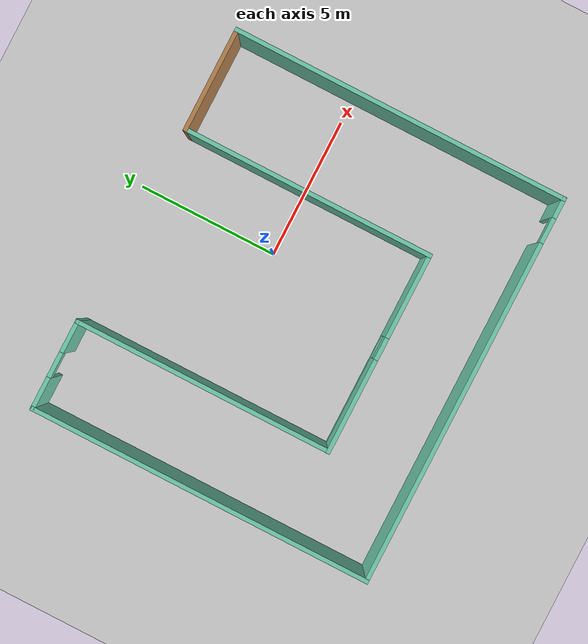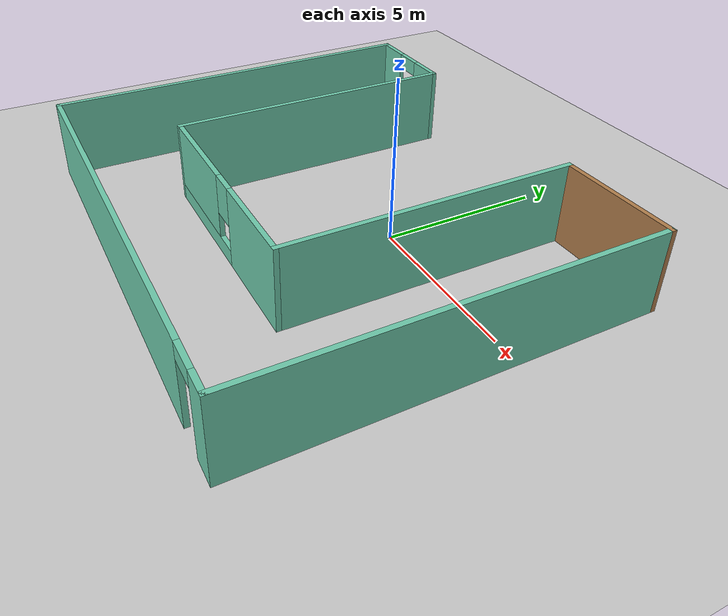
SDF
<sdf version="1.6">
 <world name="default">
  <model name="ground_plane">
   <static>1</static>
   <link name="link">
    <collision name="collision">
     <geometry><plane><normal>0 0 1</normal><size>100 100</size></plane></geometry>
     <surface>
      <contact><collide_bitmask>65535</collide_bitmask></contact>
      <friction><ode><mu>100</mu><mu2>50</mu2></ode></friction>
     </surface>
    </collision>
    <visual name="visual">
     <cast_shadows>0</cast_shadows>
     <geometry><plane><normal>0 0 1</normal><size>100 100</size></plane></geometry>
     <material>
      <script><uri>file://media/materials/scripts/gazebo.material</uri><name>Gazebo/Grey</name></script>
     </material>
    </visual>
   </link>
  </model>
  <model name="mybuilding">
   <pose>-1.10318 -1.51522 0 0 -0 0</pose>
   <link name="Wall_1">
    <collision name="Wall_1_Collision">
     <geometry><box><size>12.25 0.15 2.5</size></box></geometry>
     <pose>0 0 1.25 0 -0 0</pose>
    </collision>
    <visual name="Wall_1_Visual">
     <pose>0 0 1.25 0 -0 0</pose>
     <geometry><box><size>12.25 0.15 2.5</size></box></geometry>
     <material>
      <script><uri>file://media/materials/scripts/gazebo.material</uri><name>Gazebo/Grey</name></script>
      <ambient>0.435294 0.796078 0.67451 1</ambient>
     </material>
     <meta><layer>0</layer></meta>
    </visual>
    <pose>-6.925 0 0 0 0 -1.5708</pose>
   </link>
   <link name="Wall_2">
    <pose>-1e-06 -6.05 0 0 -0 0</pose>
    <visual name="Wall_2_Visual_0">
     <pose>-0.838181 0 1.25 0 -0 0</pose>
     <geometry><box><size>12.3236 0.15 2.5</size></box></geometry>
     <material>
      <script><uri>file://media/materials/scripts/gazebo.material</uri><name>Gazebo/Grey</name></script>
      <ambient>0.435294 0.796078 0.67451 1</ambient>
     </material>
     <meta><layer>0</layer></meta>
    </visual>
    <collision name="Wall_2_Collision_0">
     <geometry><box><size>12.3236 0.15 2.5</size></box></geometry>
     <pose>-0.838181 0 1.25 0 -0 0</pose>
    </collision>
    <visual name="Wall_2_Visual_1">
     <pose>6.61182 0 1.25 0 -0 0</pose>
     <geometry><box><size>0.776362 0.15 2.5</size></box></geometry>
     <material>
      <script><uri>file://media/materials/scripts/gazebo.material</uri><name>Gazebo/Grey</name></script>
      <ambient>0.435294 0.796078 0.67451 1</ambient>
     </material>
     <meta><layer>0</layer></meta>
    </visual>
    <collision name="Wall_2_Collision_1">
     <geometry><box><size>0.776362 0.15 2.5</size></box></geometry>
     <pose>6.61182 0 1.25 0 -0 0</pose>
    </collision>
    <visual name="Wall_2_Visual_2">
     <pose>5.77364 0 2.25 0 -0 0</pose>
     <geometry><box><size>0.9 0.15 0.5</size></box></geometry>
     <material>
      <script><uri>file://media/materials/scripts/gazebo.material</uri><name>Gazebo/Grey</name></script>
      <ambient>0.435294 0.796078 0.67451 1</ambient>
     </material>
     <meta><layer>0</layer></meta>
    </visual>
    <collision name="Wall_2_Collision_2">
     <geometry><box><size>0.9 0.15 0.5</size></box></geometry>
     <pose>5.77364 0 2.25 0 -0 0</pose>
    </collision>
   </link>
   <link name="Wall_3">
    <collision name="Wall_3_Collision">
     <geometry><box><size>12 0.15 2.5</size></box></geometry>
     <pose>0 0 1.25 0 -0 0</pose>
    </collision>
    <visual name="Wall_3_Visual">
     <pose>0 0 1.25 0 -0 0</pose>
     <geometry><box><size>12 0.15 2.5</size></box></geometry>
     <material>
      <script><uri>file://media/materials/scripts/gazebo.material</uri><name>Gazebo/Grey</name></script>
      <ambient>0.435294 0.796078 0.67451 1</ambient>
     </material>
     <meta><layer>0</layer></meta>
    </visual>
    <pose>6.925 -0.125 0 0 -0 1.5708</pose>
   </link>
   <link name="Wall_4">
    <collision name="Wall_4_Collision">
     <geometry><box><size>3.75 0.15 2.5</size></box></geometry>
     <pose>0 0 1.25 0 -0 0</pose>
    </collision>
    <visual name="Wall_4_Visual">
     <pose>0 0 1.25 0 -0 0</pose>
     <geometry><box><size>3.75 0.15 2.5</size></box></geometry>
     <material>
      <script><uri>file://media/materials/scripts/gazebo.material</uri><name>Gazebo/Wood</name></script>
      <ambient>0.435294 0.796078 0.67451 1</ambient>
     </material>
     <meta><layer>0</layer></meta>
    </visual>
    <pose>5.125 5.8 0 0 -0 3.14159</pose>
   </link>
   <link name="Wall_5">
    <collision name="Wall_5_Collision">
     <geometry><box><size>9 0.15 2.5</size></box></geometry>
     <pose>0 0 1.25 0 -0 0</pose>
    </collision>
    <visual name="Wall_5_Visual">
     <pose>0 0 1.25 0 -0 0</pose>
     <geometry><box><size>9 0.15 2.5</size></box></geometry>
     <material>
      <script><uri>file://media/materials/scripts/gazebo.material</uri><name>Gazebo/Grey</name></script>
      <ambient>0.435294 0.796078 0.67451 1</ambient>
     </material>
     <meta><layer>0</layer></meta>
    </visual>
    <pose>3.325 1.375 0 0 0 -1.5708</pose>
   </link>
   <link name="Wall_6">
    <pose>-0.225 -3.05 0 0 -0 3.14159</pose>
    <visual name="Wall_6_Visual_0">
     <pose>-2.09198 0 1.25 0 -0 0</pose>
     <geometry><box><size>3.06604 0.15 2.5</size></box></geometry>
     <material>
      <script><uri>file://media/materials/scripts/gazebo.material</uri><name>Gazebo/Grey</name></script>
      <ambient>0.435294 0.796078 0.67451 1</ambient>
     </material>
     <meta><layer>0</layer></meta>
    </visual>
    <collision name="Wall_6_Collision_0">
     <geometry><box><size>3.06604 0.15 2.5</size></box></geometry>
     <pose>-2.09198 0 1.25 0 -0 0</pose>
    </collision>
    <visual name="Wall_6_Visual_1">
     <pose>1.53302 0 0.25 0 -0 0</pose>
     <geometry><box><size>4.18396 0.15 0.5</size></box></geometry>
     <material>
      <script><uri>file://media/materials/scripts/gazebo.material</uri><name>Gazebo/Grey</name></script>
      <ambient>0.435294 0.796078 0.67451 1</ambient>
     </material>
     <meta><layer>0</layer></meta>
    </visual>
    <collision name="Wall_6_Collision_1">
     <geometry><box><size>4.18396 0.15 0.5</size></box></geometry>
     <pose>1.53302 0 0.25 0 -0 0</pose>
    </collision>
    <visual name="Wall_6_Visual_2">
     <pose>1.93302 0 1.5 0 -0 0</pose>
     <geometry><box><size>3.38396 0.15 2</size></box></geometry>
     <material>
      <script><uri>file://media/materials/scripts/gazebo.material</uri><name>Gazebo/Grey</name></script>
      <ambient>0.435294 0.796078 0.67451 1</ambient>
     </material>
     <meta><layer>0</layer></meta>
    </visual>
    <collision name="Wall_6_Collision_2">
     <geometry><box><size>3.38396 0.15 2</size></box></geometry>
     <pose>1.93302 0 1.5 0 -0 0</pose>
    </collision>
    <visual name="Wall_6_Visual_3">
     <pose>-0.158962 0 1.9 0 -0 0</pose>
     <geometry><box><size>0.8 0.15 1.2</size></box></geometry>
     <material>
      <script><uri>file://media/materials/scripts/gazebo.material</uri><name>Gazebo/Grey</name></script>
      <ambient>0.435294 0.796078 0.67451 1</ambient>
     </material>
     <meta><layer>0</layer></meta>
    </visual>
    <collision name="Wall_6_Collision_3">
     <geometry><box><size>0.8 0.15 1.2</size></box></geometry>
     <pose>-0.158962 0 1.9 0 -0 0</pose>
    </collision>
   </link>
   <link name="Wall_7">
    <collision name="Wall_7_Collision">
     <geometry><box><size>9.25 0.15 2.5</size></box></geometry>
     <pose>0 0 1.25 0 -0 0</pose>
    </collision>
    <visual name="Wall_7_Visual">
     <pose>0 0 1.25 0 -0 0</pose>
     <geometry><box><size>9.25 0.15 2.5</size></box></geometry>
     <material>
      <script><uri>file://media/materials/scripts/gazebo.material</uri><name>Gazebo/Grey</name></script>
      <ambient>0.435294 0.796078 0.67451 1</ambient>
     </material>
     <meta><layer>0</layer></meta>
    </visual>
    <pose>-3.775 1.5 0 0 -0 1.5708</pose>
   </link>
   <link name="Wall_8">
    <pose>-5.35 6.05 0 0 0 -3.14159</pose>
    <visual name="Wall_8_Visual_0">
     <pose>-1.05357 0 1.25 0 -0 0</pose>
     <geometry><box><size>1.19285 0.15 2.5</size></box></geometry>
     <material>
      <script><uri>file://media/materials/scripts/gazebo.material</uri><name>Gazebo/Grey</name></script>
      <ambient>0.435294 0.796078 0.67451 1</ambient>
     </material>
     <meta><layer>0</layer></meta>
    </visual>
    <collision name="Wall_8_Collision_0">
     <geometry><box><size>1.19285 0.15 2.5</size></box></geometry>
     <pose>-1.05357 0 1.25 0 -0 0</pose>
    </collision>
    <visual name="Wall_8_Visual_1">
     <pose>1.04643 0 1.25 0 -0 0</pose>
     <geometry><box><size>1.20715 0.15 2.5</size></box></geometry>
     <material>
      <script><uri>file://media/materials/scripts/gazebo.material</uri><name>Gazebo/Grey</name></script>
      <ambient>0.435294 0.796078 0.67451 1</ambient>
     </material>
     <meta><layer>0</layer></meta>
    </visual>
    <collision name="Wall_8_Collision_1">
     <geometry><box><size>1.20715 0.15 2.5</size></box></geometry>
     <pose>1.04643 0 1.25 0 -0 0</pose>
    </collision>
    <visual name="Wall_8_Visual_2">
     <pose>-0.007148 0 2.25 0 -0 0</pose>
     <geometry><box><size>0.9 0.15 0.5</size></box></geometry>
     <material>
      <script><uri>file://media/materials/scripts/gazebo.material</uri><name>Gazebo/Grey</name></script>
      <ambient>0.435294 0.796078 0.67451 1</ambient>
     </material>
     <meta><layer>0</layer></meta>
    </visual>
    <collision name="Wall_8_Collision_2">
     <geometry><box><size>0.9 0.15 0.5</size></box></geometry>
     <pose>-0.007148 0 2.25 0 -0 0</pose>
    </collision>
   </link>
   <static>1</static>
  </model>
 </world>
</sdf>
